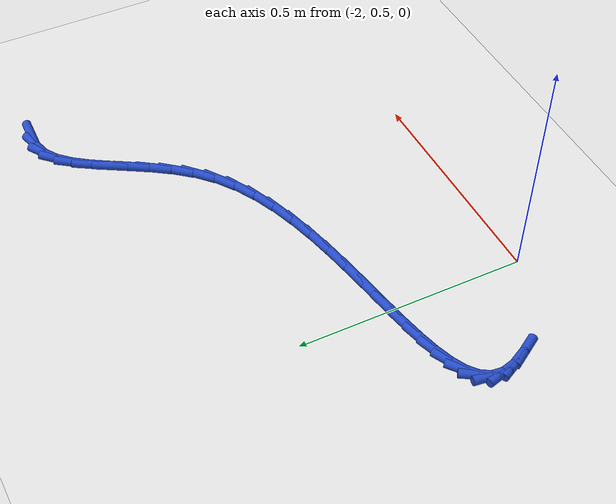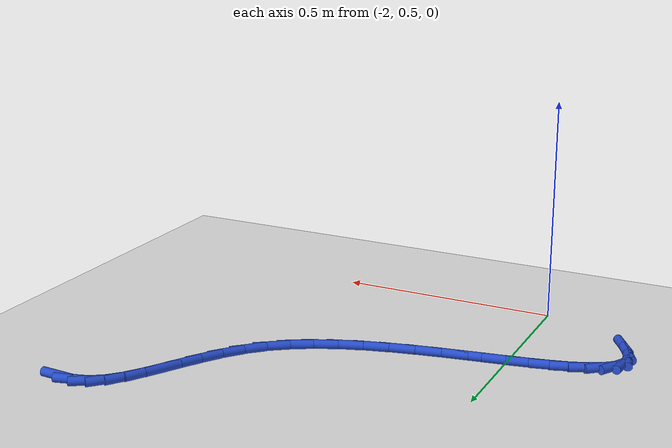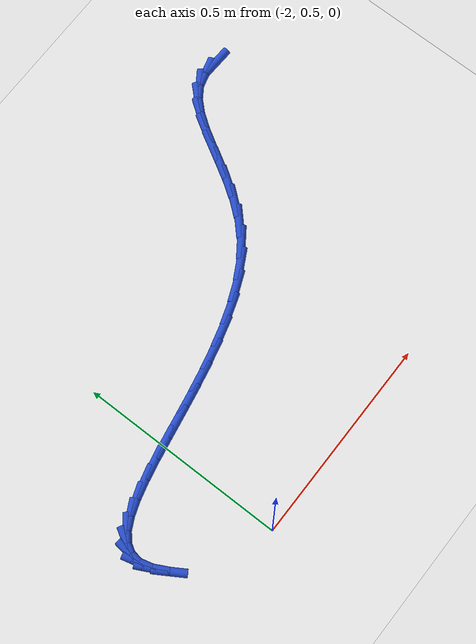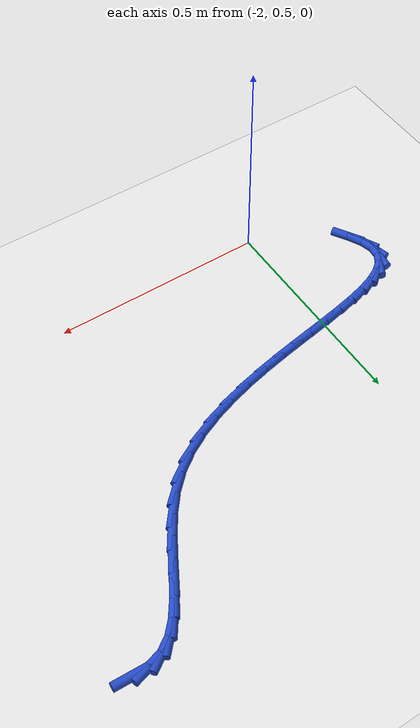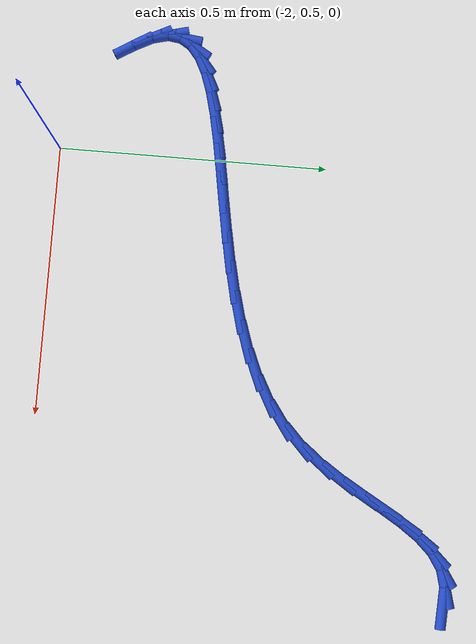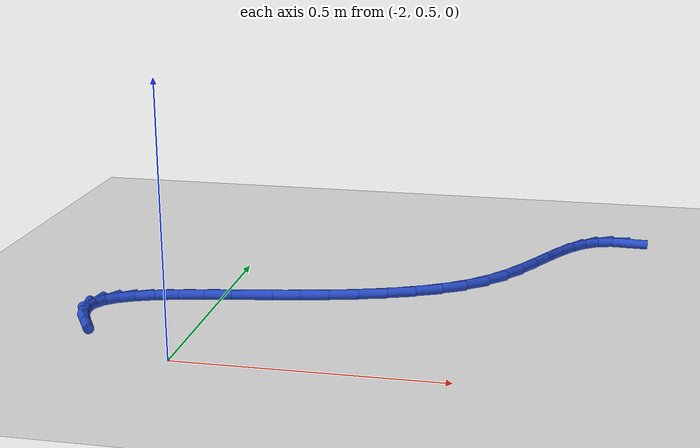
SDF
<sdf version="1.6">
 <world name="default">
  <model name="ground_plane">
   <static>1</static>
   <link name="link">
    <collision name="collision">
     <geometry><plane><normal>0 0 1</normal><size>100 100</size></plane></geometry>
     <surface><friction><ode><mu>100</mu><mu2>50</mu2></ode></friction></surface>
    </collision>
    <visual name="visual">
     <cast_shadows>0</cast_shadows>
     <geometry><plane><normal>0 0 1</normal><size>100 100</size></plane></geometry>
     <material>
      <script><uri>file://media/materials/scripts/gazebo.material</uri><name>Gazebo/WhiteGlow</name></script>
     </material>
    </visual>
   </link>
  </model>
  <model name="line">
   <link name="link_43">
    <pose>-1.2124407543899938 1.2728184377379888 0.01 0 1.57 -0.045673963490169944</pose>
    <collision name="collision">
     <geometry><cylinder><radius>0.01</radius><length>0.08</length></cylinder></geometry>
    </collision>
    <visual name="visual">
     <material>
      <script><name>Gazebo/Blue</name><uri>file://media/materials/scripts/gazebo.material</uri></script>
     </material>
     <geometry><cylinder><radius>0.01</radius><length>0.08</length></cylinder></geometry>
    </visual>
   </link>
   <link name="link_44">
    <pose>-1.2493460684264779 1.274505222807305 0.01 0 1.57 0.2624191395198274</pose>
    <collision name="collision">
     <geometry><cylinder><radius>0.01</radius><length>0.08</length></cylinder></geometry>
    </collision>
    <visual name="visual">
     <material>
      <script><name>Gazebo/Blue</name><uri>file://media/materials/scripts/gazebo.material</uri></script>
     </material>
     <geometry><cylinder><radius>0.01</radius><length>0.08</length></cylinder></geometry>
    </visual>
   </link>
   <link name="link_45">
    <pose>-1.2817631740574642 1.2657975489592763 0.01 0 1.57 0.5812949593078</pose>
    <collision name="collision">
     <geometry><cylinder><radius>0.01</radius><length>0.08</length></cylinder></geometry>
    </collision>
    <visual name="visual">
     <material>
      <script><name>Gazebo/Blue</name><uri>file://media/materials/scripts/gazebo.material</uri></script>
     </material>
     <geometry><cylinder><radius>0.01</radius><length>0.08</length></cylinder></geometry>
    </visual>
   </link>
   <link name="link_46">
    <pose>-1.3100700731833486 1.247199326419396 0.01 0 1.57 0.8123134432065343</pose>
    <collision name="collision">
     <geometry><cylinder><radius>0.01</radius><length>0.08</length></cylinder></geometry>
    </collision>
    <visual name="visual">
     <material>
      <script><name>Gazebo/Blue</name><uri>file://media/materials/scripts/gazebo.material</uri></script>
     </material>
     <geometry><cylinder><radius>0.01</radius><length>0.08</length></cylinder></geometry>
    </visual>
   </link>
   <link name="link_47">
    <pose>-1.3354104093544796 1.2204568275632617 0.01 0 1.57 0.9534069685751563</pose>
    <collision name="collision">
     <geometry><cylinder><radius>0.01</radius><length>0.08</length></cylinder></geometry>
    </collision>
    <visual name="visual">
     <material>
      <script><name>Gazebo/Blue</name><uri>file://media/materials/scripts/gazebo.material</uri></script>
     </material>
     <geometry><cylinder><radius>0.01</radius><length>0.08</length></cylinder></geometry>
    </visual>
   </link>
   <link name="link_48">
    <pose>-1.3589331773752757 1.1873250079350381 0.01 0 1.57 1.0265988983784917</pose>
    <collision name="collision">
     <geometry><cylinder><radius>0.01</radius><length>0.08</length></cylinder></geometry>
    </collision>
    <visual name="visual">
     <material>
      <script><name>Gazebo/Blue</name><uri>file://media/materials/scripts/gazebo.material</uri></script>
     </material>
     <geometry><cylinder><radius>0.01</radius><length>0.08</length></cylinder></geometry>
    </visual>
   </link>
   <link name="link_49">
    <pose>-1.3817873720501535 1.1495588230788898 0.01 0 1.57 1.049639048298989</pose>
    <collision name="collision">
     <geometry><cylinder><radius>0.01</radius><length>0.08</length></cylinder></geometry>
    </collision>
    <visual name="visual">
     <material>
      <script><name>Gazebo/Blue</name><uri>file://media/materials/scripts/gazebo.material</uri></script>
     </material>
     <geometry><cylinder><radius>0.01</radius><length>0.08</length></cylinder></geometry>
    </visual>
   </link>
   <link name="link_50">
    <pose>-1.4051219881835284 1.1089132285389807 0.01 0 1.57 1.032103687482029</pose>
    <collision name="collision">
     <geometry><cylinder><radius>0.01</radius><length>0.08</length></cylinder></geometry>
    </collision>
    <visual name="visual">
     <material>
      <script><name>Gazebo/Blue</name><uri>file://media/materials/scripts/gazebo.material</uri></script>
     </material>
     <geometry><cylinder><radius>0.01</radius><length>0.08</length></cylinder></geometry>
    </visual>
   </link>
   <link name="link_51">
    <pose>-1.4300860205798187 1.0671431798594762 0.01 0 1.57 0.9774935093933754</pose>
    <collision name="collision">
     <geometry><cylinder><radius>0.01</radius><length>0.08</length></cylinder></geometry>
    </collision>
    <visual name="visual">
     <material>
      <script><name>Gazebo/Blue</name><uri>file://media/materials/scripts/gazebo.material</uri></script>
     </material>
     <geometry><cylinder><radius>0.01</radius><length>0.08</length></cylinder></geometry>
    </visual>
   </link>
   <link name="link_52">
    <pose>-1.4578284640434411 1.0260036325845396 0.01 0 1.57 0.8856551137833352</pose>
    <collision name="collision">
     <geometry><cylinder><radius>0.01</radius><length>0.08</length></cylinder></geometry>
    </collision>
    <visual name="visual">
     <material>
      <script><name>Gazebo/Blue</name><uri>file://media/materials/scripts/gazebo.material</uri></script>
     </material>
     <geometry><cylinder><radius>0.01</radius><length>0.08</length></cylinder></geometry>
    </visual>
   </link>
   <link name="link_53">
    <pose>-1.489498313378812 0.9872495422583365 0.01 0 1.57 0.7559021925840036</pose>
    <collision name="collision">
     <geometry><cylinder><radius>0.01</radius><length>0.08</length></cylinder></geometry>
    </collision>
    <visual name="visual">
     <material>
      <script><name>Gazebo/Blue</name><uri>file://media/materials/scripts/gazebo.material</uri></script>
     </material>
     <geometry><cylinder><radius>0.01</radius><length>0.08</length></cylinder></geometry>
    </visual>
   </link>
   <link name="link_54">
    <pose>-1.5262317374903656 0.9526216015159461 0.01 0 1.57 0.612435036888896</pose>
    <collision name="collision">
     <geometry><cylinder><radius>0.01</radius><length>0.08</length></cylinder></geometry>
    </collision>
    <visual name="visual">
     <material>
      <script><name>Gazebo/Blue</name><uri>file://media/materials/scripts/gazebo.material</uri></script>
     </material>
     <geometry><cylinder><radius>0.01</radius><length>0.08</length></cylinder></geometry>
    </visual>
   </link>
   <link name="link_55">
    <pose>-1.5683925100341916 0.923001568865419 0.01 0 1.57 0.49209597525756704</pose>
    <collision name="collision">
     <geometry><cylinder><radius>0.01</radius><length>0.08</length></cylinder></geometry>
    </collision>
    <visual name="visual">
     <material>
      <script><name>Gazebo/Blue</name><uri>file://media/materials/scripts/gazebo.material</uri></script>
     </material>
     <geometry><cylinder><radius>0.01</radius><length>0.08</length></cylinder></geometry>
    </visual>
   </link>
   <link name="link_56">
    <pose>-1.6151455554488932 0.8979380349732585 0.01 0 1.57 0.39598146174606086</pose>
    <collision name="collision">
     <geometry><cylinder><radius>0.01</radius><length>0.08</length></cylinder></geometry>
    </collision>
    <visual name="visual">
     <material>
      <script><name>Gazebo/Blue</name><uri>file://media/materials/scripts/gazebo.material</uri></script>
     </material>
     <geometry><cylinder><radius>0.01</radius><length>0.08</length></cylinder></geometry>
    </visual>
   </link>
   <link name="link_57">
    <pose>-1.6655524798422692 0.8768646964274934 0.01 0 1.57 0.3207672030277832</pose>
    <collision name="collision">
     <geometry><cylinder><radius>0.01</radius><length>0.08</length></cylinder></geometry>
    </collision>
    <visual name="visual">
     <material>
      <script><name>Gazebo/Blue</name><uri>file://media/materials/scripts/gazebo.material</uri></script>
     </material>
     <geometry><cylinder><radius>0.01</radius><length>0.08</length></cylinder></geometry>
    </visual>
   </link>
   <link name="link_58">
    <pose>-1.7186748893221198 0.859215249816153 0.01 0 1.57 0.263185338425875</pose>
    <collision name="collision">
     <geometry><cylinder><radius>0.01</radius><length>0.08</length></cylinder></geometry>
    </collision>
    <visual name="visual">
     <material>
      <script><name>Gazebo/Blue</name><uri>file://media/materials/scripts/gazebo.material</uri></script>
     </material>
     <geometry><cylinder><radius>0.01</radius><length>0.08</length></cylinder></geometry>
    </visual>
   </link>
   <link name="link_59">
    <pose>-1.773574389996243 0.8444233917272663 0.01 0 1.57 0.2206223674119004</pose>
    <collision name="collision">
     <geometry><cylinder><radius>0.01</radius><length>0.08</length></cylinder></geometry>
    </collision>
    <visual name="visual">
     <material>
      <script><name>Gazebo/Blue</name><uri>file://media/materials/scripts/gazebo.material</uri></script>
     </material>
     <geometry><cylinder><radius>0.01</radius><length>0.08</length></cylinder></geometry>
    </visual>
   </link>
   <link name="link_60">
    <pose>-1.8293125879724383 0.8319228187488625 0.01 0 1.57 0.191303111531658</pose>
    <collision name="collision">
     <geometry><cylinder><radius>0.01</radius><length>0.08</length></cylinder></geometry>
    </collision>
    <visual name="visual">
     <material>
      <script><name>Gazebo/Blue</name><uri>file://media/materials/scripts/gazebo.material</uri></script>
     </material>
     <geometry><cylinder><radius>0.01</radius><length>0.08</length></cylinder></geometry>
    </visual>
   </link>
   <link name="link_61">
    <pose>-1.8849510893585042 0.821147227468971 0.01 0 1.57 0.17434441124264227</pose>
    <collision name="collision">
     <geometry><cylinder><radius>0.01</radius><length>0.08</length></cylinder></geometry>
    </collision>
    <visual name="visual">
     <material>
      <script><name>Gazebo/Blue</name><uri>file://media/materials/scripts/gazebo.material</uri></script>
     </material>
     <geometry><cylinder><radius>0.01</radius><length>0.08</length></cylinder></geometry>
    </visual>
   </link>
   <link name="link_62">
    <pose>-1.9395515002622399 0.8115303144756203 0.01 0 1.57 0.1698390735014459</pose>
    <collision name="collision">
     <geometry><cylinder><radius>0.01</radius><length>0.08</length></cylinder></geometry>
    </collision>
    <visual name="visual">
     <material>
      <script><name>Gazebo/Blue</name><uri>file://media/materials/scripts/gazebo.material</uri></script>
     </material>
     <geometry><cylinder><radius>0.01</radius><length>0.08</length></cylinder></geometry>
    </visual>
   </link>
   <link name="link_63">
    <pose>-1.992175426791445 0.80250577635684 0.01 0 1.57 0.17908337595400312</pose>
    <collision name="collision">
     <geometry><cylinder><radius>0.01</radius><length>0.08</length></cylinder></geometry>
    </collision>
    <visual name="visual">
     <material>
      <script><name>Gazebo/Blue</name><uri>file://media/materials/scripts/gazebo.material</uri></script>
     </material>
     <geometry><cylinder><radius>0.01</radius><length>0.08</length></cylinder></geometry>
    </visual>
   </link>
   <link name="link_64">
    <pose>-2.041884475053918 0.7935073097006592 0.01 0 1.57 0.20509047351317902</pose>
    <collision name="collision">
     <geometry><cylinder><radius>0.01</radius><length>0.08</length></cylinder></geometry>
    </collision>
    <visual name="visual">
     <material>
      <script><name>Gazebo/Blue</name><uri>file://media/materials/scripts/gazebo.material</uri></script>
     </material>
     <geometry><cylinder><radius>0.01</radius><length>0.08</length></cylinder></geometry>
    </visual>
   </link>
   <link name="link_65">
    <pose>-2.087740251157458 0.7839686110951072 0.01 0 1.57 0.2536508945192459</pose>
    <collision name="collision">
     <geometry><cylinder><radius>0.01</radius><length>0.08</length></cylinder></geometry>
    </collision>
    <visual name="visual">
     <material>
      <script><name>Gazebo/Blue</name><uri>file://media/materials/scripts/gazebo.material</uri></script>
     </material>
     <geometry><cylinder><radius>0.01</radius><length>0.08</length></cylinder></geometry>
    </visual>
   </link>
   <link name="link_66">
    <pose>-2.1288043612098644 0.7733233771282124 0.01 0 1.57 0.33544277724932886</pose>
    <collision name="collision">
     <geometry><cylinder><radius>0.01</radius><length>0.08</length></cylinder></geometry>
    </collision>
    <visual name="visual">
     <material>
      <script><name>Gazebo/Blue</name><uri>file://media/materials/scripts/gazebo.material</uri></script>
     </material>
     <geometry><cylinder><radius>0.01</radius><length>0.08</length></cylinder></geometry>
    </visual>
   </link>
   <link name="link_67">
    <pose>-2.1641384113189353 0.7610053043880048 0.01 0 1.57 0.46989100430429126</pose>
    <collision name="collision">
     <geometry><cylinder><radius>0.01</radius><length>0.08</length></cylinder></geometry>
    </collision>
    <visual name="visual">
     <material>
      <script><name>Gazebo/Blue</name><uri>file://media/materials/scripts/gazebo.material</uri></script>
     </material>
     <geometry><cylinder><radius>0.01</radius><length>0.08</length></cylinder></geometry>
    </visual>
   </link>
   <link name="link_68">
    <pose>-2.1928040075924713 0.7464480894625136 0.01 0 1.57 0.6894946143160586</pose>
    <collision name="collision">
     <geometry><cylinder><radius>0.01</radius><length>0.08</length></cylinder></geometry>
    </collision>
    <visual name="visual">
     <material>
      <script><name>Gazebo/Blue</name><uri>file://media/materials/scripts/gazebo.material</uri></script>
     </material>
     <geometry><cylinder><radius>0.01</radius><length>0.08</length></cylinder></geometry>
    </visual>
   </link>
   <link name="link_69">
    <pose>-2.213862756138269 0.7290854289397668 0.01 0 1.57 1.0277969908255424</pose>
    <collision name="collision">
     <geometry><cylinder><radius>0.01</radius><length>0.08</length></cylinder></geometry>
    </collision>
    <visual name="visual">
     <material>
      <script><name>Gazebo/Blue</name><uri>file://media/materials/scripts/gazebo.material</uri></script>
     </material>
     <geometry><cylinder><radius>0.01</radius><length>0.08</length></cylinder></geometry>
    </visual>
   </link>
   <link name="link_70">
    <pose>-2.22637626306413 0.7083510194077949 0.01 0 1.57 1.4486043525756949</pose>
    <collision name="collision">
     <geometry><cylinder><radius>0.01</radius><length>0.08</length></cylinder></geometry>
    </collision>
    <visual name="visual">
     <material>
      <script><name>Gazebo/Blue</name><uri>file://media/materials/scripts/gazebo.material</uri></script>
     </material>
     <geometry><cylinder><radius>0.01</radius><length>0.08</length></cylinder></geometry>
    </visual>
   </link>
   <link name="link_71">
    <pose>-2.229406134477852 0.683678557454626 0.01 0 1.57 -1.3228648958778562</pose>
    <collision name="collision">
     <geometry><cylinder><radius>0.01</radius><length>0.08</length></cylinder></geometry>
    </collision>
    <visual name="visual">
     <material>
      <script><name>Gazebo/Blue</name><uri>file://media/materials/scripts/gazebo.material</uri></script>
     </material>
     <geometry><cylinder><radius>0.01</radius><length>0.08</length></cylinder></geometry>
    </visual>
   </link>
   <link name="link_72">
    <pose>-2.222020875485342 0.6545039133024687 0.01 0 1.57 -1.1000312867171587</pose>
    <collision name="collision">
     <geometry><cylinder><radius>0.01</radius><length>0.08</length></cylinder></geometry>
    </collision>
    <visual name="visual">
     <material>
      <script><name>Gazebo/Blue</name><uri>file://media/materials/scripts/gazebo.material</uri></script>
     </material>
     <geometry><cylinder><radius>0.01</radius><length>0.08</length></cylinder></geometry>
    </visual>
   </link>
   <link name="link_73">
    <pose>-2.2048440103819402 0.6207528895964641 0.01 0 1.57 -1.0214998065494951</pose>
    <collision name="collision">
     <geometry><cylinder><radius>0.01</radius><length>0.08</length></cylinder></geometry>
    </collision>
    <visual name="visual">
     <material>
      <script><name>Gazebo/Blue</name><uri>file://media/materials/scripts/gazebo.material</uri></script>
     </material>
     <geometry><cylinder><radius>0.01</radius><length>0.08</length></cylinder></geometry>
    </visual>
   </link>
  </model>
 </world>
</sdf>
